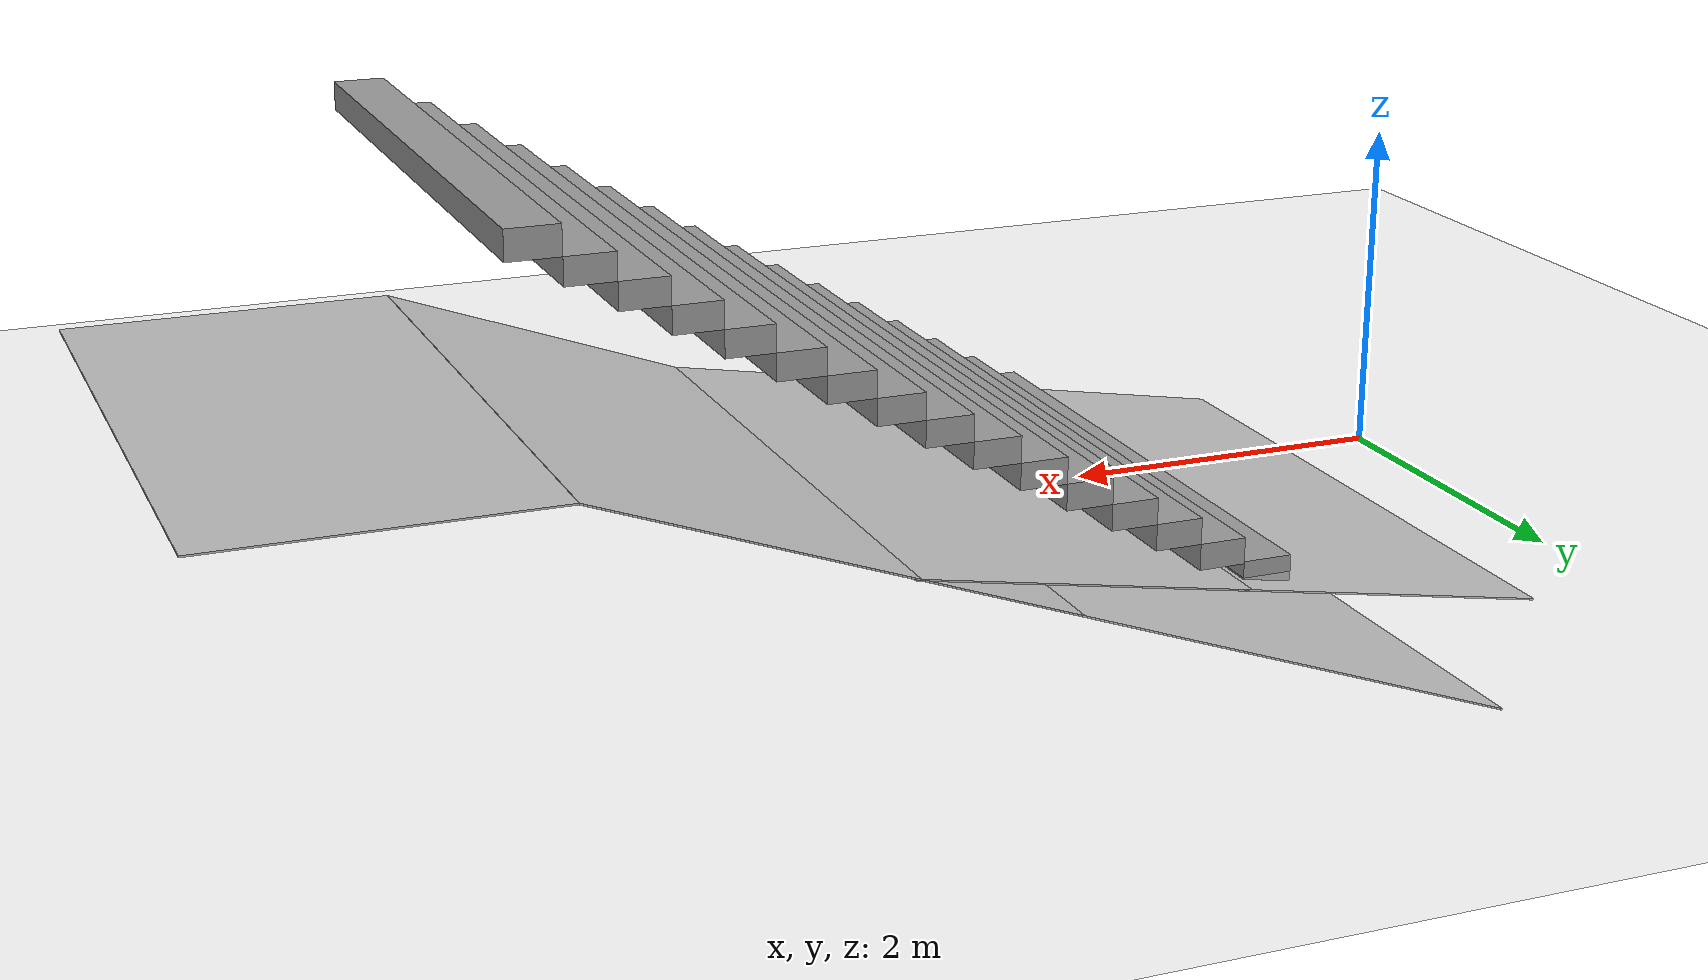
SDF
<?xml version="1.0" ?>
<sdf version="1.5">
    <world name="default">

        <physics type="ode">
        <max_step_size>0.00025</max_step_size>
        <real_time_factor>0.75</real_time_factor>
        <real_time_update_rate>2000</real_time_update_rate>
        <gravity>0 0 -9.81</gravity>
            <ode>
                <solver>
                <type>quick</type>
                <iters>80</iters>
                <sor>1.3</sor>
                </solver>
                <constraints>
                <cfm>0.0</cfm>
                <erp>0.2</erp>
                <contact_max_correcting_vel>0.1</contact_max_correcting_vel>
                <contact_surface_layer>0.0001</contact_surface_layer>
                </constraints>
            </ode>
        </physics>

        <scene>
        <sky>
            <clouds>
                <speed>12</speed>
            </clouds>
        </sky>
        </scene>
        <!-- A global light source -->
        <include>
            <uri>model://sun</uri>
        </include>
        <!-- A ground plane -->
        <include>
            <uri>model://ground_plane</uri>
        </include>
        <!-- environment blocks, obstacles or stairs -->
        <model name="static_environment">
        <static>true</static>

            <link name="slope1">
                <pose> 2 0 0 0 -0.1745 0</pose>
                <collision name="slope1_collision">
                    <geometry>
                        <box>
                            <size>4 4 0.01</size>
                        </box>
                    </geometry>
                    <surface>
                        <friction>
                            <ode>
                                <mu>0.8</mu>
                                <mu2>0.8</mu2>
                            </ode>
                        </friction>
                    </surface>
                </collision>
                <visual name="slope1_visual">
                    <geometry>
                        <box>
                            <size>4 4 0.01</size>
                        </box>
                    </geometry>
                </visual>
            </link>

            <link name="slope2">
                <pose> 3 0 0 0 -0.3491 0</pose>
                <collision name="slope2_collision">
                    <geometry>
                        <box>
                            <size>6 4 0.01</size>
                        </box>
                    </geometry>
                    <surface>
                        <friction>
                            <ode>
                                <mu>0.8</mu>
                                <mu2>0.8</mu2>
                            </ode>
                        </friction>
                    </surface>
                </collision>
                <visual name="slope2_visual">
                    <geometry>
                        <box>
                            <size>6 4 0.01</size>
                        </box>
                    </geometry>
                </visual>
            </link>

            <link name="step">
                <pose>6.819 0 1.026 0 0 0</pose>
                <collision name="step_collision">
                    <geometry>
                        <box>
                            <size>2 4 0.01</size>
                        </box>
                    </geometry>
                    <surface>
                        <friction>
                            <ode>
                                <mu>0.7</mu>
                                <mu2>0.7</mu2>
                            </ode>
                        </friction>
                    </surface>
                </collision>
                <visual name="step_visual">
                    <geometry>
                        <box>
                            <size>2 4 0.01</size>
                        </box>
                    </geometry>
                </visual>
            </link>

        </model>

        <include>
		<uri>model://stairs</uri>
        </include>

    </world>
</sdf>

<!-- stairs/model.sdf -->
<sdf version='1.7'>
  <model name='stairs'>
    <link name='Stairs'>
      <pose>3 2e-06 0 0 -0 0</pose>
      <self_collide>0</self_collide>
      <enable_wind>0</enable_wind>
      <kinematic>0</kinematic>
      <gravity>1</gravity>
      <inertial>
        <mass>1</mass>
        <pose>0 0 0 0 -0 0</pose>
        <inertia>
          <ixx>1</ixx>
          <ixy>0</ixy>
          <ixz>0</ixz>
          <iyy>1</iyy>
          <iyz>0</iyz>
          <izz>1</izz>
        </inertia>
      </inertial>
      <scale>1 1 1</scale>
      <visual name='Stairs_Visual_14'>
        <pose>2.6775 0 2.1875 0 -0 1.5708</pose>
        <geometry>
          <box>
            <size>3.66 0.28125 0.15625</size>
          </box>
        </geometry>
        <material>
          <script>
            <uri>file://media/materials/scripts/gazebo.material</uri>
            <name>Gazebo/Grey</name>
          </script>
          <ambient>1 1 1 1</ambient>
          <shader type='pixel'>
            <normal_map>__default__</normal_map>
          </shader>
          <diffuse>0.7 0.7 0.7 1</diffuse>
          <specular>0.01 0.01 0.01 1</specular>
          <emissive>0 0 0 1</emissive>
        </material>
        <meta>
          <layer>0</layer>
        </meta>
        <transparency>0</transparency>
        <cast_shadows>1</cast_shadows>
      </visual>
      <visual name='Stairs_Visual_7'>
        <pose>0.70875 0 1.09375 0 -0 1.5708</pose>
        <geometry>
          <box>
            <size>3.66 0.28125 0.15625</size>
          </box>
        </geometry>
        <material>
          <script>
            <uri>file://media/materials/scripts/gazebo.material</uri>
            <name>Gazebo/Grey</name>
          </script>
          <ambient>1 1 1 1</ambient>
          <shader type='pixel'>
            <normal_map>__default__</normal_map>
          </shader>
          <diffuse>0.7 0.7 0.7 1</diffuse>
          <specular>0.01 0.01 0.01 1</specular>
          <emissive>0 0 0 1</emissive>
        </material>
        <meta>
          <layer>0</layer>
        </meta>
        <transparency>0</transparency>
        <cast_shadows>1</cast_shadows>
      </visual>
      <visual name='Stairs_Visual_10'>
        <pose>1.5525 0 1.5625 0 -0 1.5708</pose>
        <geometry>
          <box>
            <size>3.66 0.28125 0.15625</size>
          </box>
        </geometry>
        <material>
          <script>
            <uri>file://media/materials/scripts/gazebo.material</uri>
            <name>Gazebo/Grey</name>
          </script>
          <ambient>1 1 1 1</ambient>
          <shader type='pixel'>
            <normal_map>__default__</normal_map>
          </shader>
          <diffuse>0.7 0.7 0.7 1</diffuse>
          <specular>0.01 0.01 0.01 1</specular>
          <emissive>0 0 0 1</emissive>
        </material>
        <meta>
          <layer>0</layer>
        </meta>
        <transparency>0</transparency>
        <cast_shadows>1</cast_shadows>
      </visual>
      <visual name='Stairs_Visual_11'>
        <pose>1.83375 0 1.71875 0 -0 1.5708</pose>
        <geometry>
          <box>
            <size>3.66 0.28125 0.15625</size>
          </box>
        </geometry>
        <material>
          <script>
            <uri>file://media/materials/scripts/gazebo.material</uri>
            <name>Gazebo/Grey</name>
          </script>
          <ambient>1 1 1 1</ambient>
          <shader type='pixel'>
            <normal_map>__default__</normal_map>
          </shader>
          <diffuse>0.7 0.7 0.7 1</diffuse>
          <specular>0.01 0.01 0.01 1</specular>
          <emissive>0 0 0 1</emissive>
        </material>
        <meta>
          <layer>0</layer>
        </meta>
        <transparency>0</transparency>
        <cast_shadows>1</cast_shadows>
      </visual>
      <visual name='Stairs_Visual_1'>
        <pose>-0.97875 0 0.15625 0 -0 1.5708</pose>
        <geometry>
          <box>
            <size>3.66 0.28125 0.15625</size>
          </box>
        </geometry>
        <material>
          <script>
            <uri>file://media/materials/scripts/gazebo.material</uri>
            <name>Gazebo/Grey</name>
          </script>
          <ambient>1 1 1 1</ambient>
          <shader type='pixel'>
            <normal_map>__default__</normal_map>
          </shader>
          <diffuse>0.7 0.7 0.7 1</diffuse>
          <specular>0.01 0.01 0.01 1</specular>
          <emissive>0 0 0 1</emissive>
        </material>
        <meta>
          <layer>0</layer>
        </meta>
        <transparency>0</transparency>
        <cast_shadows>1</cast_shadows>
      </visual>
      <visual name='Stairs_Visual_8'>
        <pose>0.99 0 1.25 0 -0 1.5708</pose>
        <geometry>
          <box>
            <size>3.66 0.28125 0.15625</size>
          </box>
        </geometry>
        <material>
          <script>
            <uri>file://media/materials/scripts/gazebo.material</uri>
            <name>Gazebo/Grey</name>
          </script>
          <ambient>1 1 1 1</ambient>
          <shader type='pixel'>
            <normal_map>__default__</normal_map>
          </shader>
          <diffuse>0.7 0.7 0.7 1</diffuse>
          <specular>0.01 0.01 0.01 1</specular>
          <emissive>0 0 0 1</emissive>
        </material>
        <meta>
          <layer>0</layer>
        </meta>
        <transparency>0</transparency>
        <cast_shadows>1</cast_shadows>
      </visual>
      <visual name='Stairs_Visual_2'>
        <pose>-0.6975 0 0.3125 0 -0 1.5708</pose>
        <geometry>
          <box>
            <size>3.66 0.28125 0.15625</size>
          </box>
        </geometry>
        <material>
          <script>
            <uri>file://media/materials/scripts/gazebo.material</uri>
            <name>Gazebo/Grey</name>
          </script>
          <ambient>1 1 1 1</ambient>
          <shader type='pixel'>
            <normal_map>__default__</normal_map>
          </shader>
          <diffuse>0.7 0.7 0.7 1</diffuse>
          <specular>0.01 0.01 0.01 1</specular>
          <emissive>0 0 0 1</emissive>
        </material>
        <meta>
          <layer>0</layer>
        </meta>
        <transparency>0</transparency>
        <cast_shadows>1</cast_shadows>
      </visual>
      <visual name='Stairs_Visual_0'>
        <pose>-1.27 0 0.005 0 -0 1.5708</pose>
        <geometry>
          <box>
            <size>3.66 0.3 0.17</size>
          </box>
        </geometry>
        <material>
          <script>
            <uri>file://media/materials/scripts/gazebo.material</uri>
            <name>Gazebo/Grey</name>
          </script>
          <ambient>1 1 1 1</ambient>
          <shader type='pixel'>
            <normal_map>__default__</normal_map>
          </shader>
          <diffuse>0.7 0.7 0.7 1</diffuse>
          <specular>0.01 0.01 0.01 1</specular>
          <emissive>0 0 0 1</emissive>
        </material>
        <meta>
          <layer>0</layer>
        </meta>
        <transparency>0</transparency>
        <cast_shadows>1</cast_shadows>
      </visual>
      <visual name='Stairs_Visual_12'>
        <pose>2.115 0 1.875 0 -0 1.5708</pose>
        <geometry>
          <box>
            <size>3.66 0.28125 0.15625</size>
          </box>
        </geometry>
        <material>
          <script>
            <uri>file://media/materials/scripts/gazebo.material</uri>
            <name>Gazebo/Grey</name>
          </script>
          <ambient>1 1 1 1</ambient>
          <shader type='pixel'>
            <normal_map>__default__</normal_map>
          </shader>
          <diffuse>0.7 0.7 0.7 1</diffuse>
          <specular>0.01 0.01 0.01 1</specular>
          <emissive>0 0 0 1</emissive>
        </material>
        <meta>
          <layer>0</layer>
        </meta>
        <transparency>0</transparency>
        <cast_shadows>1</cast_shadows>
      </visual>
      <visual name='Stairs_Visual_9'>
        <pose>1.27125 0 1.40625 0 -0 1.5708</pose>
        <geometry>
          <box>
            <size>3.66 0.28125 0.15625</size>
          </box>
        </geometry>
        <material>
          <script>
            <uri>file://media/materials/scripts/gazebo.material</uri>
            <name>Gazebo/Grey</name>
          </script>
          <ambient>1 1 1 1</ambient>
          <shader type='pixel'>
            <normal_map>__default__</normal_map>
          </shader>
          <diffuse>0.7 0.7 0.7 1</diffuse>
          <specular>0.01 0.01 0.01 1</specular>
          <emissive>0 0 0 1</emissive>
        </material>
        <meta>
          <layer>0</layer>
        </meta>
        <transparency>0</transparency>
        <cast_shadows>1</cast_shadows>
      </visual>
      <visual name='Stairs_Visual_6'>
        <pose>0.4275 0 0.9375 0 -0 1.5708</pose>
        <geometry>
          <box>
            <size>3.66 0.28125 0.15625</size>
          </box>
        </geometry>
        <material>
          <script>
            <uri>file://media/materials/scripts/gazebo.material</uri>
            <name>Gazebo/Grey</name>
          </script>
          <ambient>1 1 1 1</ambient>
          <shader type='pixel'>
            <normal_map>__default__</normal_map>
          </shader>
          <diffuse>0.7 0.7 0.7 1</diffuse>
          <specular>0.01 0.01 0.01 1</specular>
          <emissive>0 0 0 1</emissive>
        </material>
        <meta>
          <layer>0</layer>
        </meta>
        <transparency>0</transparency>
        <cast_shadows>1</cast_shadows>
      </visual>
      <visual name='Stairs_Visual_13'>
        <pose>2.39625 0 2.03125 0 -0 1.5708</pose>
        <geometry>
          <box>
            <size>3.66 0.28125 0.15625</size>
          </box>
        </geometry>
        <material>
          <script>
            <uri>file://media/materials/scripts/gazebo.material</uri>
            <name>Gazebo/Grey</name>
          </script>
          <ambient>1 1 1 1</ambient>
          <shader type='pixel'>
            <normal_map>__default__</normal_map>
          </shader>
          <diffuse>0.7 0.7 0.7 1</diffuse>
          <specular>0.01 0.01 0.01 1</specular>
          <emissive>0 0 0 1</emissive>
        </material>
        <meta>
          <layer>0</layer>
        </meta>
        <transparency>0</transparency>
        <cast_shadows>1</cast_shadows>
      </visual>
      <visual name='Stairs_Visual_4'>
        <pose>-0.135 0 0.625 0 -0 1.5708</pose>
        <geometry>
          <box>
            <size>3.66 0.28125 0.15625</size>
          </box>
        </geometry>
        <material>
          <script>
            <uri>file://media/materials/scripts/gazebo.material</uri>
            <name>Gazebo/Grey</name>
          </script>
          <ambient>1 1 1 1</ambient>
          <shader type='pixel'>
            <normal_map>__default__</normal_map>
          </shader>
          <diffuse>0.7 0.7 0.7 1</diffuse>
          <specular>0.01 0.01 0.01 1</specular>
          <emissive>0 0 0 1</emissive>
        </material>
        <meta>
          <layer>0</layer>
        </meta>
        <transparency>0</transparency>
        <cast_shadows>1</cast_shadows>
      </visual>
      <visual name='Stairs_Visual_5'>
        <pose>0.14625 0 0.78125 0 -0 1.5708</pose>
        <geometry>
          <box>
            <size>3.66 0.28125 0.15625</size>
          </box>
        </geometry>
        <material>
          <script>
            <uri>file://media/materials/scripts/gazebo.material</uri>
            <name>Gazebo/Grey</name>
          </script>
          <ambient>1 1 1 1</ambient>
          <shader type='pixel'>
            <normal_map>__default__</normal_map>
          </shader>
          <diffuse>0.7 0.7 0.7 1</diffuse>
          <specular>0.01 0.01 0.01 1</specular>
          <emissive>0 0 0 1</emissive>
        </material>
        <meta>
          <layer>0</layer>
        </meta>
        <transparency>0</transparency>
        <cast_shadows>1</cast_shadows>
      </visual>
      <visual name='Stairs_Visual_15'>
        <pose>2.969 0 2.35 0 -0 1.5708</pose>
        <geometry>
          <box>
            <size>3.66 0.3 0.17</size>
          </box>
        </geometry>
        <material>
          <script>
            <uri>file://media/materials/scripts/gazebo.material</uri>
            <name>Gazebo/Grey</name>
          </script>
          <ambient>1 1 1 1</ambient>
          <shader type='pixel'>
            <normal_map>__default__</normal_map>
          </shader>
          <diffuse>0.7 0.7 0.7 1</diffuse>
          <specular>0.01 0.01 0.01 1</specular>
          <emissive>0 0 0 1</emissive>
        </material>
        <meta>
          <layer>0</layer>
        </meta>
        <transparency>0</transparency>
        <cast_shadows>1</cast_shadows>
      </visual>
      <visual name='Stairs_Visual_3'>
        <pose>-0.41625 0 0.46875 0 -0 1.5708</pose>
        <geometry>
          <box>
            <size>3.66 0.28125 0.15625</size>
          </box>
        </geometry>
        <material>
          <script>
            <uri>file://media/materials/scripts/gazebo.material</uri>
            <name>Gazebo/Grey</name>
          </script>
          <ambient>1 1 1 1</ambient>
          <shader type='pixel'>
            <normal_map>__default__</normal_map>
          </shader>
          <diffuse>0.7 0.7 0.7 1</diffuse>
          <specular>0.01 0.01 0.01 1</specular>
          <emissive>0 0 0 1</emissive>
        </material>
        <meta>
          <layer>0</layer>
        </meta>
        <transparency>0</transparency>
        <cast_shadows>1</cast_shadows>
      </visual>
      <collision name='Stairs_Collision_9'>
        <laser_retro>0</laser_retro>
        <max_contacts>10</max_contacts>
        <pose>1.27125 0 1.40625 0 -0 1.5708</pose>
        <geometry>
          <box>
            <size>3.66 0.28125 0.15625</size>
          </box>
        </geometry>
        <surface>
          <friction>
            <ode>
              <mu>1</mu>
              <mu2>1</mu2>
              <fdir1>0 0 0</fdir1>
              <slip1>0</slip1>
              <slip2>0</slip2>
            </ode>
            <torsional>
              <coefficient>1</coefficient>
              <patch_radius>0</patch_radius>
              <surface_radius>0</surface_radius>
              <use_patch_radius>1</use_patch_radius>
              <ode>
                <slip>0</slip>
              </ode>
            </torsional>
          </friction>
          <bounce>
            <restitution_coefficient>0</restitution_coefficient>
            <threshold>1e+06</threshold>
          </bounce>
          <contact>
            <collide_without_contact>0</collide_without_contact>
            <collide_without_contact_bitmask>1</collide_without_contact_bitmask>
            <collide_bitmask>1</collide_bitmask>
            <ode>
              <soft_cfm>0</soft_cfm>
              <soft_erp>0.2</soft_erp>
              <kp>1e+13</kp>
              <kd>1</kd>
              <max_vel>0.01</max_vel>
              <min_depth>0</min_depth>
            </ode>
            <bullet>
              <split_impulse>1</split_impulse>
              <split_impulse_penetration_threshold>-0.01</split_impulse_penetration_threshold>
              <soft_cfm>0</soft_cfm>
              <soft_erp>0.2</soft_erp>
              <kp>1e+13</kp>
              <kd>1</kd>
            </bullet>
          </contact>
        </surface>
      </collision>
      <collision name='Stairs_Collision_1'>
        <laser_retro>0</laser_retro>
        <max_contacts>10</max_contacts>
        <pose>-0.97875 0 0.15625 0 -0 1.5708</pose>
        <geometry>
          <box>
            <size>3.66 0.3 0.1566</size>
          </box>
        </geometry>
        <surface>
          <friction>
            <ode>
              <mu>1</mu>
              <mu2>1</mu2>
              <fdir1>0 0 0</fdir1>
              <slip1>0</slip1>
              <slip2>0</slip2>
            </ode>
            <torsional>
              <coefficient>1</coefficient>
              <patch_radius>0</patch_radius>
              <surface_radius>0</surface_radius>
              <use_patch_radius>1</use_patch_radius>
              <ode>
                <slip>0</slip>
              </ode>
            </torsional>
          </friction>
          <bounce>
            <restitution_coefficient>0</restitution_coefficient>
            <threshold>1e+06</threshold>
          </bounce>
          <contact>
            <collide_without_contact>0</collide_without_contact>
            <collide_without_contact_bitmask>1</collide_without_contact_bitmask>
            <collide_bitmask>1</collide_bitmask>
            <ode>
              <soft_cfm>0</soft_cfm>
              <soft_erp>0.2</soft_erp>
              <kp>1e+13</kp>
              <kd>1</kd>
              <max_vel>0.01</max_vel>
              <min_depth>0</min_depth>
            </ode>
            <bullet>
              <split_impulse>1</split_impulse>
              <split_impulse_penetration_threshold>-0.01</split_impulse_penetration_threshold>
              <soft_cfm>0</soft_cfm>
              <soft_erp>0.2</soft_erp>
              <kp>1e+13</kp>
              <kd>1</kd>
            </bullet>
          </contact>
        </surface>
      </collision>
      <collision name='Stairs_Collision_6'>
        <laser_retro>0</laser_retro>
        <max_contacts>10</max_contacts>
        <pose>0.4275 0 0.9375 0 -0 1.5708</pose>
        <geometry>
          <box>
            <size>3.66 0.28125 0.15625</size>
          </box>
        </geometry>
        <surface>
          <friction>
            <ode>
              <mu>1</mu>
              <mu2>1</mu2>
              <fdir1>0 0 0</fdir1>
              <slip1>0</slip1>
              <slip2>0</slip2>
            </ode>
            <torsional>
              <coefficient>1</coefficient>
              <patch_radius>0</patch_radius>
              <surface_radius>0</surface_radius>
              <use_patch_radius>1</use_patch_radius>
              <ode>
                <slip>0</slip>
              </ode>
            </torsional>
          </friction>
          <bounce>
            <restitution_coefficient>0</restitution_coefficient>
            <threshold>1e+06</threshold>
          </bounce>
          <contact>
            <collide_without_contact>0</collide_without_contact>
            <collide_without_contact_bitmask>1</collide_without_contact_bitmask>
            <collide_bitmask>1</collide_bitmask>
            <ode>
              <soft_cfm>0</soft_cfm>
              <soft_erp>0.2</soft_erp>
              <kp>1e+13</kp>
              <kd>1</kd>
              <max_vel>0.01</max_vel>
              <min_depth>0</min_depth>
            </ode>
            <bullet>
              <split_impulse>1</split_impulse>
              <split_impulse_penetration_threshold>-0.01</split_impulse_penetration_threshold>
              <soft_cfm>0</soft_cfm>
              <soft_erp>0.2</soft_erp>
              <kp>1e+13</kp>
              <kd>1</kd>
            </bullet>
          </contact>
        </surface>
      </collision>
      <collision name='Stairs_Collision_7'>
        <laser_retro>0</laser_retro>
        <max_contacts>10</max_contacts>
        <pose>0.70875 0 1.09375 0 -0 1.5708</pose>
        <geometry>
          <box>
            <size>3.66 0.28125 0.15625</size>
          </box>
        </geometry>
        <surface>
          <friction>
            <ode>
              <mu>1</mu>
              <mu2>1</mu2>
              <fdir1>0 0 0</fdir1>
              <slip1>0</slip1>
              <slip2>0</slip2>
            </ode>
            <torsional>
              <coefficient>1</coefficient>
              <patch_radius>0</patch_radius>
              <surface_radius>0</surface_radius>
              <use_patch_radius>1</use_patch_radius>
              <ode>
                <slip>0</slip>
              </ode>
            </torsional>
          </friction>
          <bounce>
            <restitution_coefficient>0</restitution_coefficient>
            <threshold>1e+06</threshold>
          </bounce>
          <contact>
            <collide_without_contact>0</collide_without_contact>
            <collide_without_contact_bitmask>1</collide_without_contact_bitmask>
            <collide_bitmask>1</collide_bitmask>
            <ode>
              <soft_cfm>0</soft_cfm>
              <soft_erp>0.2</soft_erp>
              <kp>1e+13</kp>
              <kd>1</kd>
              <max_vel>0.01</max_vel>
              <min_depth>0</min_depth>
            </ode>
            <bullet>
              <split_impulse>1</split_impulse>
              <split_impulse_penetration_threshold>-0.01</split_impulse_penetration_threshold>
              <soft_cfm>0</soft_cfm>
              <soft_erp>0.2</soft_erp>
              <kp>1e+13</kp>
              <kd>1</kd>
            </bullet>
          </contact>
        </surface>
      </collision>
      <collision name='Stairs_Collision_10'>
        <laser_retro>0</laser_retro>
        <max_contacts>10</max_contacts>
        <pose>1.5525 0 1.5625 0 -0 1.5708</pose>
        <geometry>
          <box>
            <size>3.66 0.28125 0.15625</size>
          </box>
        </geometry>
        <surface>
          <friction>
            <ode>
              <mu>1</mu>
              <mu2>1</mu2>
              <fdir1>0 0 0</fdir1>
              <slip1>0</slip1>
              <slip2>0</slip2>
            </ode>
            <torsional>
              <coefficient>1</coefficient>
              <patch_radius>0</patch_radius>
              <surface_radius>0</surface_radius>
              <use_patch_radius>1</use_patch_radius>
              <ode>
                <slip>0</slip>
              </ode>
            </torsional>
          </friction>
          <bounce>
            <restitution_coefficient>0</restitution_coefficient>
            <threshold>1e+06</threshold>
          </bounce>
          <contact>
            <collide_without_contact>0</collide_without_contact>
            <collide_without_contact_bitmask>1</collide_without_contact_bitmask>
            <collide_bitmask>1</collide_bitmask>
            <ode>
              <soft_cfm>0</soft_cfm>
              <soft_erp>0.2</soft_erp>
              <kp>1e+13</kp>
              <kd>1</kd>
              <max_vel>0.01</max_vel>
              <min_depth>0</min_depth>
            </ode>
            <bullet>
              <split_impulse>1</split_impulse>
              <split_impulse_penetration_threshold>-0.01</split_impulse_penetration_threshold>
              <soft_cfm>0</soft_cfm>
              <soft_erp>0.2</soft_erp>
              <kp>1e+13</kp>
              <kd>1</kd>
            </bullet>
          </contact>
        </surface>
      </collision>
      <collision name='Stairs_Collision_5'>
        <laser_retro>0</laser_retro>
        <max_contacts>10</max_contacts>
        <pose>0.14625 0 0.78125 0 -0 1.5708</pose>
        <geometry>
          <box>
            <size>3.66 0.28125 0.15625</size>
          </box>
        </geometry>
        <surface>
          <friction>
            <ode>
              <mu>1</mu>
              <mu2>1</mu2>
              <fdir1>0 0 0</fdir1>
              <slip1>0</slip1>
              <slip2>0</slip2>
            </ode>
            <torsional>
              <coefficient>1</coefficient>
              <patch_radius>0</patch_radius>
              <surface_radius>0</surface_radius>
              <use_patch_radius>1</use_patch_radius>
              <ode>
                <slip>0</slip>
              </ode>
            </torsional>
          </friction>
          <bounce>
            <restitution_coefficient>0</restitution_coefficient>
            <threshold>1e+06</threshold>
          </bounce>
          <contact>
            <collide_without_contact>0</collide_without_contact>
            <collide_without_contact_bitmask>1</collide_without_contact_bitmask>
            <collide_bitmask>1</collide_bitmask>
            <ode>
              <soft_cfm>0</soft_cfm>
              <soft_erp>0.2</soft_erp>
              <kp>1e+13</kp>
              <kd>1</kd>
              <max_vel>0.01</max_vel>
              <min_depth>0</min_depth>
            </ode>
            <bullet>
              <split_impulse>1</split_impulse>
              <split_impulse_penetration_threshold>-0.01</split_impulse_penetration_threshold>
              <soft_cfm>0</soft_cfm>
              <soft_erp>0.2</soft_erp>
              <kp>1e+13</kp>
              <kd>1</kd>
            </bullet>
          </contact>
        </surface>
      </collision>
      <collision name='Stairs_Collision_2'>
        <laser_retro>0</laser_retro>
        <max_contacts>10</max_contacts>
        <pose>-0.6975 0 0.3125 0 -0 1.5708</pose>
        <geometry>
          <box>
            <size>3.66 0.28125 0.15625</size>
          </box>
        </geometry>
        <surface>
          <friction>
            <ode>
              <mu>1</mu>
              <mu2>1</mu2>
              <fdir1>0 0 0</fdir1>
              <slip1>0</slip1>
              <slip2>0</slip2>
            </ode>
            <torsional>
              <coefficient>1</coefficient>
              <patch_radius>0</patch_radius>
              <surface_radius>0</surface_radius>
              <use_patch_radius>1</use_patch_radius>
              <ode>
                <slip>0</slip>
              </ode>
            </torsional>
          </friction>
          <bounce>
            <restitution_coefficient>0</restitution_coefficient>
            <threshold>1e+06</threshold>
          </bounce>
          <contact>
            <collide_without_contact>0</collide_without_contact>
            <collide_without_contact_bitmask>1</collide_without_contact_bitmask>
            <collide_bitmask>1</collide_bitmask>
            <ode>
              <soft_cfm>0</soft_cfm>
              <soft_erp>0.2</soft_erp>
              <kp>1e+13</kp>
              <kd>1</kd>
              <max_vel>0.01</max_vel>
              <min_depth>0</min_depth>
            </ode>
            <bullet>
              <split_impulse>1</split_impulse>
              <split_impulse_penetration_threshold>-0.01</split_impulse_penetration_threshold>
              <soft_cfm>0</soft_cfm>
              <soft_erp>0.2</soft_erp>
              <kp>1e+13</kp>
              <kd>1</kd>
            </bullet>
          </contact>
        </surface>
      </collision>
      <collision name='Stairs_Collision_8'>
        <laser_retro>0</laser_retro>
        <max_contacts>10</max_contacts>
        <pose>0.99 0 1.25 0 -0 1.5708</pose>
        <geometry>
          <box>
            <size>3.66 0.28125 0.15625</size>
          </box>
        </geometry>
        <surface>
          <friction>
            <ode>
              <mu>1</mu>
              <mu2>1</mu2>
              <fdir1>0 0 0</fdir1>
              <slip1>0</slip1>
              <slip2>0</slip2>
            </ode>
            <torsional>
              <coefficient>1</coefficient>
              <patch_radius>0</patch_radius>
              <surface_radius>0</surface_radius>
              <use_patch_radius>1</use_patch_radius>
              <ode>
                <slip>0</slip>
              </ode>
            </torsional>
          </friction>
          <bounce>
            <restitution_coefficient>0</restitution_coefficient>
            <threshold>1e+06</threshold>
          </bounce>
          <contact>
            <collide_without_contact>0</collide_without_contact>
            <collide_without_contact_bitmask>1</collide_without_contact_bitmask>
            <collide_bitmask>1</collide_bitmask>
            <ode>
              <soft_cfm>0</soft_cfm>
              <soft_erp>0.2</soft_erp>
              <kp>1e+13</kp>
              <kd>1</kd>
              <max_vel>0.01</max_vel>
              <min_depth>0</min_depth>
            </ode>
            <bullet>
              <split_impulse>1</split_impulse>
              <split_impulse_penetration_threshold>-0.01</split_impulse_penetration_threshold>
              <soft_cfm>0</soft_cfm>
              <soft_erp>0.2</soft_erp>
              <kp>1e+13</kp>
              <kd>1</kd>
            </bullet>
          </contact>
        </surface>
      </collision>
      <collision name='Stairs_Collision_4'>
        <laser_retro>0</laser_retro>
        <max_contacts>10</max_contacts>
        <pose>-0.135 0 0.625 0 -0 1.5708</pose>
        <geometry>
          <box>
            <size>3.66 0.28125 0.15625</size>
          </box>
        </geometry>
        <surface>
          <friction>
            <ode>
              <mu>1</mu>
              <mu2>1</mu2>
              <fdir1>0 0 0</fdir1>
              <slip1>0</slip1>
              <slip2>0</slip2>
            </ode>
            <torsional>
              <coefficient>1</coefficient>
              <patch_radius>0</patch_radius>
              <surface_radius>0</surface_radius>
              <use_patch_radius>1</use_patch_radius>
              <ode>
                <slip>0</slip>
              </ode>
            </torsional>
          </friction>
          <bounce>
            <restitution_coefficient>0</restitution_coefficient>
            <threshold>1e+06</threshold>
          </bounce>
          <contact>
            <collide_without_contact>0</collide_without_contact>
            <collide_without_contact_bitmask>1</collide_without_contact_bitmask>
            <collide_bitmask>1</collide_bitmask>
            <ode>
              <soft_cfm>0</soft_cfm>
              <soft_erp>0.2</soft_erp>
              <kp>1e+13</kp>
              <kd>1</kd>
              <max_vel>0.01</max_vel>
              <min_depth>0</min_depth>
            </ode>
            <bullet>
              <split_impulse>1</split_impulse>
              <split_impulse_penetration_threshold>-0.01</split_impulse_penetration_threshold>
              <soft_cfm>0</soft_cfm>
              <soft_erp>0.2</soft_erp>
              <kp>1e+13</kp>
              <kd>1</kd>
            </bullet>
          </contact>
        </surface>
      </collision>
      <collision name='Stairs_Collision_11'>
        <laser_retro>0</laser_retro>
        <max_contacts>10</max_contacts>
        <pose>1.83375 0 1.71875 0 -0 1.5708</pose>
        <geometry>
          <box>
            <size>3.66 0.28125 0.15625</size>
          </box>
        </geometry>
        <surface>
          <friction>
            <ode>
              <mu>1</mu>
              <mu2>1</mu2>
              <fdir1>0 0 0</fdir1>
              <slip1>0</slip1>
              <slip2>0</slip2>
            </ode>
            <torsional>
              <coefficient>1</coefficient>
              <patch_radius>0</patch_radius>
              <surface_radius>0</surface_radius>
              <use_patch_radius>1</use_patch_radius>
              <ode>
                <slip>0</slip>
              </ode>
            </torsional>
          </friction>
          <bounce>
            <restitution_coefficient>0</restitution_coefficient>
            <threshold>1e+06</threshold>
          </bounce>
          <contact>
            <collide_without_contact>0</collide_without_contact>
            <collide_without_contact_bitmask>1</collide_without_contact_bitmask>
            <collide_bitmask>1</collide_bitmask>
            <ode>
              <soft_cfm>0</soft_cfm>
              <soft_erp>0.2</soft_erp>
              <kp>1e+13</kp>
              <kd>1</kd>
              <max_vel>0.01</max_vel>
              <min_depth>0</min_depth>
            </ode>
            <bullet>
              <split_impulse>1</split_impulse>
              <split_impulse_penetration_threshold>-0.01</split_impulse_penetration_threshold>
              <soft_cfm>0</soft_cfm>
              <soft_erp>0.2</soft_erp>
              <kp>1e+13</kp>
              <kd>1</kd>
            </bullet>
          </contact>
        </surface>
      </collision>
      <collision name='Stairs_Collision_13'>
        <laser_retro>0</laser_retro>
        <max_contacts>10</max_contacts>
        <pose>2.39625 0 2.03125 0 -0 1.5708</pose>
        <geometry>
          <box>
            <size>3.66 0.28125 0.15625</size>
          </box>
        </geometry>
        <surface>
          <friction>
            <ode>
              <mu>1</mu>
              <mu2>1</mu2>
              <fdir1>0 0 0</fdir1>
              <slip1>0</slip1>
              <slip2>0</slip2>
            </ode>
            <torsional>
              <coefficient>1</coefficient>
              <patch_radius>0</patch_radius>
              <surface_radius>0</surface_radius>
              <use_patch_radius>1</use_patch_radius>
              <ode>
                <slip>0</slip>
              </ode>
            </torsional>
          </friction>
          <bounce>
            <restitution_coefficient>0</restitution_coefficient>
            <threshold>1e+06</threshold>
          </bounce>
          <contact>
            <collide_without_contact>0</collide_without_contact>
            <collide_without_contact_bitmask>1</collide_without_contact_bitmask>
            <collide_bitmask>1</collide_bitmask>
            <ode>
              <soft_cfm>0</soft_cfm>
              <soft_erp>0.2</soft_erp>
              <kp>1e+13</kp>
              <kd>1</kd>
              <max_vel>0.01</max_vel>
              <min_depth>0</min_depth>
            </ode>
            <bullet>
              <split_impulse>1</split_impulse>
              <split_impulse_penetration_threshold>-0.01</split_impulse_penetration_threshold>
              <soft_cfm>0</soft_cfm>
              <soft_erp>0.2</soft_erp>
              <kp>1e+13</kp>
              <kd>1</kd>
            </bullet>
          </contact>
        </surface>
      </collision>
      <collision name='Stairs_Collision_0'>
        <laser_retro>0</laser_retro>
        <max_contacts>10</max_contacts>
        <pose>-1.27 0 -0.005 0 -0 1.5708</pose>
        <geometry>
          <box>
            <size>3.66 0.3 0.2</size>
          </box>
        </geometry>
        <surface>
          <friction>
            <ode>
              <mu>1</mu>
              <mu2>1</mu2>
              <fdir1>0 0 0</fdir1>
              <slip1>0</slip1>
              <slip2>0</slip2>
            </ode>
            <torsional>
              <coefficient>1</coefficient>
              <patch_radius>0</patch_radius>
              <surface_radius>0</surface_radius>
              <use_patch_radius>1</use_patch_radius>
              <ode>
                <slip>0</slip>
              </ode>
            </torsional>
          </friction>
          <bounce>
            <restitution_coefficient>0</restitution_coefficient>
            <threshold>1e+06</threshold>
          </bounce>
          <contact>
            <collide_without_contact>0</collide_without_contact>
            <collide_without_contact_bitmask>1</collide_without_contact_bitmask>
            <collide_bitmask>1</collide_bitmask>
            <ode>
              <soft_cfm>0</soft_cfm>
              <soft_erp>0.2</soft_erp>
              <kp>1e+13</kp>
              <kd>1</kd>
              <max_vel>0.01</max_vel>
              <min_depth>0</min_depth>
            </ode>
            <bullet>
              <split_impulse>1</split_impulse>
              <split_impulse_penetration_threshold>-0.01</split_impulse_penetration_threshold>
              <soft_cfm>0</soft_cfm>
              <soft_erp>0.2</soft_erp>
              <kp>1e+13</kp>
              <kd>1</kd>
            </bullet>
          </contact>
        </surface>
      </collision>
      <collision name='Stairs_Collision_3'>
        <laser_retro>0</laser_retro>
        <max_contacts>10</max_contacts>
        <pose>-0.41625 0 0.46875 0 -0 1.5708</pose>
        <geometry>
          <box>
            <size>3.66 0.28125 0.15625</size>
          </box>
        </geometry>
        <surface>
          <friction>
            <ode>
              <mu>1</mu>
              <mu2>1</mu2>
              <fdir1>0 0 0</fdir1>
              <slip1>0</slip1>
              <slip2>0</slip2>
            </ode>
            <torsional>
              <coefficient>1</coefficient>
              <patch_radius>0</patch_radius>
              <surface_radius>0</surface_radius>
              <use_patch_radius>1</use_patch_radius>
              <ode>
                <slip>0</slip>
              </ode>
            </torsional>
          </friction>
          <bounce>
            <restitution_coefficient>0</restitution_coefficient>
            <threshold>1e+06</threshold>
          </bounce>
          <contact>
            <collide_without_contact>0</collide_without_contact>
            <collide_without_contact_bitmask>1</collide_without_contact_bitmask>
            <collide_bitmask>1</collide_bitmask>
            <ode>
              <soft_cfm>0</soft_cfm>
              <soft_erp>0.2</soft_erp>
              <kp>1e+13</kp>
              <kd>1</kd>
              <max_vel>0.01</max_vel>
              <min_depth>0</min_depth>
            </ode>
            <bullet>
              <split_impulse>1</split_impulse>
              <split_impulse_penetration_threshold>-0.01</split_impulse_penetration_threshold>
              <soft_cfm>0</soft_cfm>
              <soft_erp>0.2</soft_erp>
              <kp>1e+13</kp>
              <kd>1</kd>
            </bullet>
          </contact>
        </surface>
      </collision>
      <collision name='Stairs_Collision_12'>
        <laser_retro>0</laser_retro>
        <max_contacts>10</max_contacts>
        <pose>2.115 0 1.875 0 -0 1.5708</pose>
        <geometry>
          <box>
            <size>3.66 0.28125 0.15625</size>
          </box>
        </geometry>
        <surface>
          <friction>
            <ode>
              <mu>1</mu>
              <mu2>1</mu2>
              <fdir1>0 0 0</fdir1>
              <slip1>0</slip1>
              <slip2>0</slip2>
            </ode>
            <torsional>
              <coefficient>1</coefficient>
              <patch_radius>0</patch_radius>
              <surface_radius>0</surface_radius>
              <use_patch_radius>1</use_patch_radius>
              <ode>
                <slip>0</slip>
              </ode>
            </torsional>
          </friction>
          <bounce>
            <restitution_coefficient>0</restitution_coefficient>
            <threshold>1e+06</threshold>
          </bounce>
          <contact>
            <collide_without_contact>0</collide_without_contact>
            <collide_without_contact_bitmask>1</collide_without_contact_bitmask>
            <collide_bitmask>1</collide_bitmask>
            <ode>
              <soft_cfm>0</soft_cfm>
              <soft_erp>0.2</soft_erp>
              <kp>1e+13</kp>
              <kd>1</kd>
              <max_vel>0.01</max_vel>
              <min_depth>0</min_depth>
            </ode>
            <bullet>
              <split_impulse>1</split_impulse>
              <split_impulse_penetration_threshold>-0.01</split_impulse_penetration_threshold>
              <soft_cfm>0</soft_cfm>
              <soft_erp>0.2</soft_erp>
              <kp>1e+13</kp>
              <kd>1</kd>
            </bullet>
          </contact>
        </surface>
      </collision>
      <collision name='Stairs_Collision_14'>
        <laser_retro>0</laser_retro>
        <max_contacts>10</max_contacts>
        <pose>2.6775 0 2.1875 0 -0 1.5708</pose>
        <geometry>
          <box>
            <size>3.66 0.28125 0.15625</size>
          </box>
        </geometry>
        <surface>
          <friction>
            <ode>
              <mu>1</mu>
              <mu2>1</mu2>
              <fdir1>0 0 0</fdir1>
              <slip1>0</slip1>
              <slip2>0</slip2>
            </ode>
            <torsional>
              <coefficient>1</coefficient>
              <patch_radius>0</patch_radius>
              <surface_radius>0</surface_radius>
              <use_patch_radius>1</use_patch_radius>
              <ode>
                <slip>0</slip>
              </ode>
            </torsional>
          </friction>
          <bounce>
            <restitution_coefficient>0</restitution_coefficient>
            <threshold>1e+06</threshold>
          </bounce>
          <contact>
            <collide_without_contact>0</collide_without_contact>
            <collide_without_contact_bitmask>1</collide_without_contact_bitmask>
            <collide_bitmask>1</collide_bitmask>
            <ode>
              <soft_cfm>0</soft_cfm>
              <soft_erp>0.2</soft_erp>
              <kp>1e+13</kp>
              <kd>1</kd>
              <max_vel>0.01</max_vel>
              <min_depth>0</min_depth>
            </ode>
            <bullet>
              <split_impulse>1</split_impulse>
              <split_impulse_penetration_threshold>-0.01</split_impulse_penetration_threshold>
              <soft_cfm>0</soft_cfm>
              <soft_erp>0.2</soft_erp>
              <kp>1e+13</kp>
              <kd>1</kd>
            </bullet>
          </contact>
        </surface>
      </collision>
      <collision name='Stairs_Collision_15'>
        <laser_retro>0</laser_retro>
        <max_contacts>10</max_contacts>
        <pose>2.969 0 2.35 0 -0 1.5708</pose>
        <geometry>
          <box>
            <size>3.66 0.3 0.17</size>
          </box>
        </geometry>
        <surface>
          <friction>
            <ode>
              <mu>1</mu>
              <mu2>1</mu2>
              <fdir1>0 0 0</fdir1>
              <slip1>0</slip1>
              <slip2>0</slip2>
            </ode>
            <torsional>
              <coefficient>1</coefficient>
              <patch_radius>0</patch_radius>
              <surface_radius>0</surface_radius>
              <use_patch_radius>1</use_patch_radius>
              <ode>
                <slip>0</slip>
              </ode>
            </torsional>
          </friction>
          <bounce>
            <restitution_coefficient>0</restitution_coefficient>
            <threshold>1e+06</threshold>
          </bounce>
          <contact>
            <collide_without_contact>0</collide_without_contact>
            <collide_without_contact_bitmask>1</collide_without_contact_bitmask>
            <collide_bitmask>1</collide_bitmask>
            <ode>
              <soft_cfm>0</soft_cfm>
              <soft_erp>0.2</soft_erp>
              <kp>1e+13</kp>
              <kd>1</kd>
              <max_vel>0.01</max_vel>
              <min_depth>0</min_depth>
            </ode>
            <bullet>
              <split_impulse>1</split_impulse>
              <split_impulse_penetration_threshold>-0.01</split_impulse_penetration_threshold>
              <soft_cfm>0</soft_cfm>
              <soft_erp>0.2</soft_erp>
              <kp>1e+13</kp>
              <kd>1</kd>
            </bullet>
          </contact>
        </surface>
      </collision>
    </link>
    <static>1</static>
    <allow_auto_disable>1</allow_auto_disable>
  </model>
</sdf>
